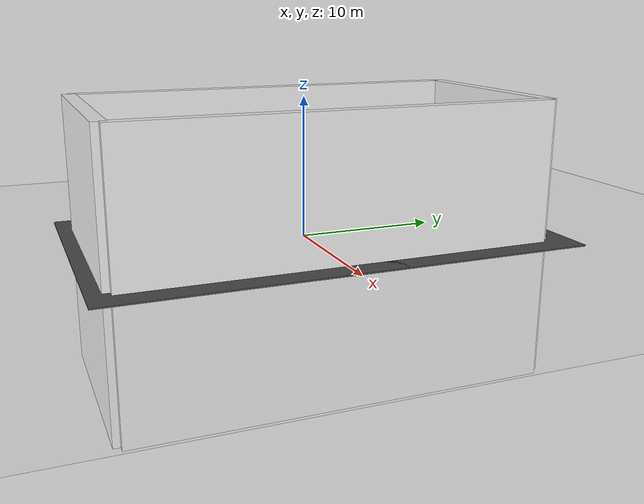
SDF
<sdf version="1.6">
 <world name="default">
  <light name="sun" type="directional">
   <pose>0 0 500 0 -0 0</pose>
   <diffuse>0.8 0.8 0.8 1</diffuse>
   <specular>0.2 0.2 0.2 1</specular>
   <attenuation>
    <range>1000</range>
    <constant>0.9</constant>
    <linear>0.01</linear>
    <quadratic>0.001</quadratic>
   </attenuation>
   <direction>-0.5 0.1 -0.9</direction>
  </light>
  <model name="ground_plane">
   <static>1</static>
   <link name="link">
    <collision name="collision">
     <geometry><plane><normal>0 0 1</normal><size>10000 10000</size></plane></geometry>
     <surface><friction><ode><mu>100</mu><mu2>50</mu2></ode></friction></surface>
    </collision>
    <visual name="visual">
     <cast_shadows>0</cast_shadows>
     <geometry><plane><normal>0 0 1</normal><size>10000 10000</size></plane></geometry>
     <material>
      <script><uri>file://media/materials/scripts/gazebo.material</uri><name>Gazebo/White</name></script>
     </material>
    </visual>
    <velocity_decay><linear>0</linear><angular>0</angular></velocity_decay>
   </link>
  </model>
  <physics name="default_physics" default="0" type="ode">
   <max_step_size>0.001</max_step_size>
   <real_time_factor>1</real_time_factor>
   <real_time_update_rate>1000</real_time_update_rate>
  </physics>
  <scene><ambient>0.4 0.4 0.4 1</ambient><background>0.7 0.7 0.7 1</background><shadows>1</shadows></scene>
  <spherical_coordinates>
   <surface_model>EARTH_WGS84</surface_model>
   <latitude_deg>0</latitude_deg>
   <longitude_deg>0</longitude_deg>
   <elevation>0</elevation>
   <heading_deg>0</heading_deg>
  </spherical_coordinates>
  <model name="cave_1">
   <pose>0 15 0 0 -0 0</pose>
   <link name="link">
    <inertial>
     <mass>1000</mass>
     <inertia><ixx>1000</ixx><ixy>0</ixy><ixz>0</ixz><iyy>1000</iyy><iyz>0</iyz><izz>1000</izz></inertia>
    </inertial>
    <collision name="collision"><geometry><box><size>15 1 20</size></box></geometry></collision>
    <visual name="visual">
     <geometry><box><size>15 1 20</size></box></geometry>
     <material>
      <script><uri>file://media/materials/scripts/gazebo.material</uri><name>Gazebo/White</name></script>
     </material>
    </visual>
    <velocity_decay><linear>0</linear><angular>0</angular></velocity_decay>
   </link>
   <static>1</static>
  </model>
  <model name="cave_2">
   <pose>0 -15 0 0 -0 0</pose>
   <link name="link">
    <inertial>
     <mass>1000</mass>
     <inertia><ixx>1000</ixx><ixy>0</ixy><ixz>0</ixz><iyy>1000</iyy><iyz>0</iyz><izz>1000</izz></inertia>
    </inertial>
    <collision name="collision"><geometry><box><size>15 1 20</size></box></geometry></collision>
    <visual name="visual">
     <geometry><box><size>15 1 20</size></box></geometry>
     <material>
      <script><uri>file://media/materials/scripts/gazebo.material</uri><name>Gazebo/White</name></script>
     </material>
    </visual>
    <velocity_decay><linear>0</linear><angular>0</angular></velocity_decay>
   </link>
   <static>1</static>
  </model>
  <model name="cave_3">
   <pose>7.5 0 0 0 -0 0</pose>
   <link name="link">
    <inertial>
     <mass>1000</mass>
     <inertia><ixx>1000</ixx><ixy>0</ixy><ixz>0</ixz><iyy>1000</iyy><iyz>0</iyz><izz>1000</izz></inertia>
    </inertial>
    <collision name="collision"><geometry><box><size>1 30 20</size></box></geometry></collision>
    <visual name="visual">
     <geometry><box><size>1 30 20</size></box></geometry>
     <material>
      <script><uri>file://media/materials/scripts/gazebo.material</uri><name>Gazebo/White</name></script>
     </material>
    </visual>
    <velocity_decay><linear>0</linear><angular>0</angular></velocity_decay>
   </link>
   <static>1</static>
  </model>
  <model name="cave_4">
   <pose>-7.5 0 0 0 -0 0</pose>
   <link name="link">
    <inertial>
     <mass>1000</mass>
     <inertia><ixx>1000</ixx><ixy>0</ixy><ixz>0</ixz><iyy>1000</iyy><iyz>0</iyz><izz>1000</izz></inertia>
    </inertial>
    <collision name="collision"><geometry><box><size>1 30 20</size></box></geometry></collision>
    <visual name="visual">
     <geometry><box><size>1 30 20</size></box></geometry>
     <material>
      <script><uri>file://media/materials/scripts/gazebo.material</uri><name>Gazebo/White</name></script>
     </material>
    </visual>
    <velocity_decay><linear>0</linear><angular>0</angular></velocity_decay>
   </link>
   <static>1</static>
  </model>
  <gravity>0 0 -9.8</gravity>
  <magnetic_field>6e-06 2.3e-05 -4.2e-05</magnetic_field>
  <atmosphere type="adiabatic"/>
  <model name="asphalt_plane">
   <static>1</static>
   <link name="link">
    <collision name="collision"><geometry><box><size>20 20 0.1</size></box></geometry></collision>
    <visual name="visual">
     <cast_shadows>0</cast_shadows>
     <geometry><box><size>20 20 0.1</size></box></geometry>
     <material>
      <script>
       <uri>model://asphalt_plane/materials/scripts</uri>
       <uri>model://asphalt_plane/materials/textures</uri>
       <name>vrc/asphalt</name>
      </script>
     </material>
    </visual>
   </link>
   <pose>-0.343097 -6.51771 0 0 -0 0</pose>
  </model>
  <model name="asphalt_plane_0">
   <static>1</static>
   <link name="link">
    <collision name="collision"><geometry><box><size>20 20 0.1</size></box></geometry></collision>
    <visual name="visual">
     <cast_shadows>0</cast_shadows>
     <geometry><box><size>20 20 0.1</size></box></geometry>
     <material>
      <script>
       <uri>model://asphalt_plane/materials/scripts</uri>
       <uri>model://asphalt_plane/materials/textures</uri>
       <name>vrc/asphalt</name>
      </script>
     </material>
    </visual>
   </link>
   <pose>-0.328594 7.23156 0 0 -0 0</pose>
  </model>
 </world>
</sdf>
